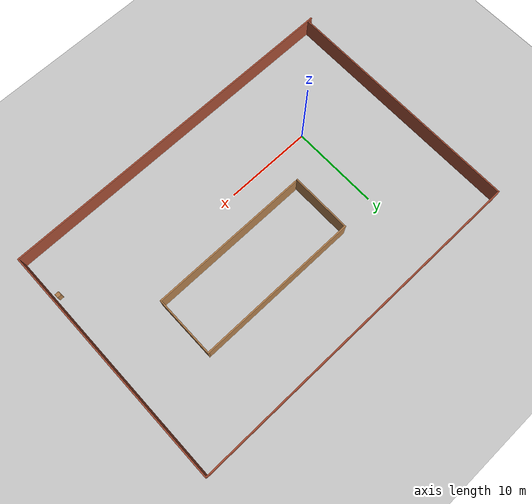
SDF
<sdf version="1.7">
 <world name="default">
  <light name="sun" type="directional">
   <pose>0 0 10 0 -0 0</pose>
   <diffuse>0.8 0.8 0.8 1</diffuse>
   <specular>0.2 0.2 0.2 1</specular>
   <attenuation>
    <range>1000</range>
    <constant>0.9</constant>
    <linear>0.01</linear>
    <quadratic>0.001</quadratic>
   </attenuation>
   <direction>-0.5 0.1 -0.9</direction>
   <spot><inner_angle>0</inner_angle><outer_angle>0</outer_angle><falloff>0</falloff></spot>
  </light>
  <gravity>0 0 -9.8</gravity>
  <magnetic_field>6e-06 2.3e-05 -4.2e-05</magnetic_field>
  <atmosphere type="adiabatic"/>
  <physics type="ode">
   <max_step_size>0.001</max_step_size>
   <real_time_factor>1</real_time_factor>
   <real_time_update_rate>1000</real_time_update_rate>
  </physics>
  <scene><ambient>0.4 0.4 0.4 1</ambient><background>0.7 0.7 0.7 1</background><shadows>1</shadows></scene>
  <spherical_coordinates>
   <surface_model>EARTH_WGS84</surface_model>
   <latitude_deg>0</latitude_deg>
   <longitude_deg>0</longitude_deg>
   <elevation>0</elevation>
   <heading_deg>0</heading_deg>
  </spherical_coordinates>
  <model name="Untitled999">
   <pose>10.3729 5.00854 0 0 -0 0</pose>
   <link name="Wall_1">
    <collision name="Wall_1_Collision">
     <geometry><box><size>40.5 0.15 2.5</size></box></geometry>
     <pose>0 0 1.25 0 -0 0</pose>
    </collision>
    <visual name="Wall_1_Visual">
     <pose>0 0 1.25 0 -0 0</pose>
     <geometry><box><size>40.5 0.15 2.5</size></box></geometry>
     <material>
      <script><uri>file://media/materials/scripts/gazebo.material</uri><name>Gazebo/Bricks</name></script>
      <ambient>1 1 1 1</ambient>
     </material>
     <meta><layer>0</layer></meta>
    </visual>
    <pose>0 -13.85 0 0 -0 0</pose>
   </link>
   <link name="Wall_10">
    <collision name="Wall_10_Collision">
     <geometry><box><size>18.5 0.15 2.5</size></box></geometry>
     <pose>0 0 1.25 0 -0 0</pose>
    </collision>
    <visual name="Wall_10_Visual">
     <pose>0 0 1.25 0 -0 0</pose>
     <geometry><box><size>18.5 0.15 2.5</size></box></geometry>
     <material>
      <script><uri>file://media/materials/scripts/gazebo.material</uri><name>Gazebo/Wood</name></script>
      <ambient>1 1 1 1</ambient>
     </material>
     <meta><layer>0</layer></meta>
    </visual>
    <pose>3.47913 5.75626 0 0 -0 3.14159</pose>
   </link>
   <link name="Wall_11">
    <collision name="Wall_11_Collision">
     <geometry><box><size>7 0.15 2.5</size></box></geometry>
     <pose>0 0 1.25 0 -0 0</pose>
    </collision>
    <visual name="Wall_11_Visual">
     <pose>0 0 1.25 0 -0 0</pose>
     <geometry><box><size>7 0.15 2.5</size></box></geometry>
     <material>
      <script><uri>file://media/materials/scripts/gazebo.material</uri><name>Gazebo/Wood</name></script>
      <ambient>1 1 1 1</ambient>
     </material>
     <meta><layer>0</layer></meta>
    </visual>
    <pose>-5.69587 2.33126 0 0 -0 -1.5708</pose>
   </link>
   <link name="Wall_2">
    <collision name="Wall_2_Collision">
     <geometry><box><size>21.75 0.15 2.5</size></box></geometry>
     <pose>0 0 1.25 0 -0 0</pose>
    </collision>
    <visual name="Wall_2_Visual">
     <pose>0 0 1.25 0 -0 0</pose>
     <geometry><box><size>21.75 0.15 2.5</size></box></geometry>
     <material>
      <script><uri>file://media/materials/scripts/gazebo.material</uri><name>Gazebo/Bricks</name></script>
      <ambient>1 1 1 1</ambient>
     </material>
     <meta><layer>0</layer></meta>
    </visual>
    <pose>20.175 -3.05 0 0 -0 1.5708</pose>
   </link>
   <link name="Wall_3">
    <collision name="Wall_3_Collision">
     <geometry><box><size>6.25 0.15 2.5</size></box></geometry>
     <pose>0 0 1.25 0 -0 0</pose>
    </collision>
    <visual name="Wall_3_Visual">
     <pose>0 0 1.25 0 -0 0</pose>
     <geometry><box><size>6.25 0.15 2.5</size></box></geometry>
     <material>
      <script><uri>file://media/materials/scripts/gazebo.material</uri><name>Gazebo/Bricks</name></script>
      <ambient>1 1 1 1</ambient>
     </material>
     <meta><layer>0</layer></meta>
    </visual>
    <pose>20.175 10.8 0 0 -0 1.5708</pose>
   </link>
   <link name="Wall_4">
    <collision name="Wall_4_Collision">
     <geometry><box><size>40 0.15 2.5</size></box></geometry>
     <pose>0 0 1.25 0 -0 0</pose>
    </collision>
    <visual name="Wall_4_Visual">
     <pose>0 0 1.25 0 -0 0</pose>
     <geometry><box><size>40 0.15 2.5</size></box></geometry>
     <material>
      <script><uri>file://media/materials/scripts/gazebo.material</uri><name>Gazebo/Bricks</name></script>
      <ambient>1 1 1 1</ambient>
     </material>
     <meta><layer>0</layer></meta>
    </visual>
    <pose>0.25 13.85 0 0 -0 3.14159</pose>
   </link>
   <link name="Wall_5">
    <collision name="Wall_5_Collision">
     <geometry><box><size>27.75 0.15 2.5</size></box></geometry>
     <pose>0 0 1.25 0 -0 0</pose>
    </collision>
    <visual name="Wall_5_Visual">
     <pose>0 0 1.25 0 -0 0</pose>
     <geometry><box><size>27.75 0.15 2.5</size></box></geometry>
     <material>
      <script><uri>file://media/materials/scripts/gazebo.material</uri><name>Gazebo/Bricks</name></script>
      <ambient>1 1 1 1</ambient>
     </material>
     <meta><layer>0</layer></meta>
    </visual>
    <pose>-19.675 0.05 0 0 -0 -1.5708</pose>
   </link>
   <link name="Wall_8">
    <collision name="Wall_8_Collision">
     <geometry><box><size>18.25 0.15 2.5</size></box></geometry>
     <pose>0 0 1.25 0 -0 0</pose>
    </collision>
    <visual name="Wall_8_Visual">
     <pose>0 0 1.25 0 -0 0</pose>
     <geometry><box><size>18.25 0.15 2.5</size></box></geometry>
     <material>
      <script><uri>file://media/materials/scripts/gazebo.material</uri><name>Gazebo/Wood</name></script>
      <ambient>1 1 1 1</ambient>
     </material>
     <meta><layer>0</layer></meta>
    </visual>
    <pose>3.60413 -1.09374 0 0 -0 0</pose>
   </link>
   <link name="Wall_9">
    <collision name="Wall_9_Collision">
     <geometry><box><size>7 0.15 2.5</size></box></geometry>
     <pose>0 0 1.25 0 -0 0</pose>
    </collision>
    <visual name="Wall_9_Visual">
     <pose>0 0 1.25 0 -0 0</pose>
     <geometry><box><size>7 0.15 2.5</size></box></geometry>
     <material>
      <script><uri>file://media/materials/scripts/gazebo.material</uri><name>Gazebo/Wood</name></script>
      <ambient>1 1 1 1</ambient>
     </material>
     <meta><layer>0</layer></meta>
    </visual>
    <pose>12.6541 2.33126 0 0 -0 1.5708</pose>
   </link>
   <static>1</static>
  </model>
  <model name="cabinet">
   <static>1</static>
   <link name="cabinet_bottom_plate">
    <inertial>
     <pose>0 0 -1 0 -0 0</pose>
     <inertia><ixx>2.05</ixx><ixy>0</ixy><ixz>0</ixz><iyy>2.05</iyy><iyz>0</iyz><izz>2.05</izz></inertia>
     <mass>25</mass>
    </inertial>
    <collision name="cabinet_bottom_plate_geom">
     <pose>0 0 0.01 0 -0 0</pose>
     <geometry><box><size>0.45 0.45 0.02</size></box></geometry>
    </collision>
    <visual name="cabinet_bottom_plate_geom_visual">
     <pose>0 0 0.01 0 -0 0</pose>
     <geometry><box><size>0.45 0.45 0.02</size></box></geometry>
     <material>
      <script><uri>file://media/materials/scripts/gazebo.material</uri><name>Gazebo/Wood</name></script>
     </material>
    </visual>
    <collision name="cabinet_bottom_plate_geom_cabinet_back_plate">
     <pose>0.235 0 0.51 0 -0 0</pose>
     <geometry><box><size>0.02 0.45 1.02</size></box></geometry>
    </collision>
    <visual name="cabinet_bottom_plate_geom_cabinet_back_plate_visual">
     <pose>0.235 0 0.51 0 -0 0</pose>
     <geometry><box><size>0.02 0.45 1.02</size></box></geometry>
     <material>
      <script><uri>file://media/materials/scripts/gazebo.material</uri><name>Gazebo/Wood</name></script>
     </material>
    </visual>
    <collision name="cabinet_bottom_plate_geom_cabinet_left_plate">
     <pose>0 0.235 0.51 0 -0 0</pose>
     <geometry><box><size>0.45 0.02 1.02</size></box></geometry>
    </collision>
    <visual name="cabinet_bottom_plate_geom_cabinet_left_plate_visual">
     <pose>0 0.235 0.51 0 -0 0</pose>
     <geometry><box><size>0.45 0.02 1.02</size></box></geometry>
     <material>
      <script><uri>file://media/materials/scripts/gazebo.material</uri><name>Gazebo/Wood</name></script>
     </material>
    </visual>
    <collision name="cabinet_bottom_plate_geom_cabinet_middle_plate">
     <pose>0 0 0.51 0 -0 0</pose>
     <geometry><box><size>0.45 0.45 0.02</size></box></geometry>
    </collision>
    <visual name="cabinet_bottom_plate_geom_cabinet_middle_plate_visual">
     <pose>0 0 0.51 0 -0 0</pose>
     <geometry><box><size>0.45 0.45 0.02</size></box></geometry>
     <material>
      <script><uri>file://media/materials/scripts/gazebo.material</uri><name>Gazebo/Wood</name></script>
     </material>
    </visual>
    <collision name="cabinet_bottom_plate_geom_cabinet_right_plate">
     <pose>0 -0.235 0.51 0 -0 0</pose>
     <geometry><box><size>0.45 0.02 1.02</size></box></geometry>
    </collision>
    <visual name="cabinet_bottom_plate_geom_cabinet_right_plate_visual">
     <pose>0 -0.235 0.51 0 -0 0</pose>
     <geometry><box><size>0.45 0.02 1.02</size></box></geometry>
     <material>
      <script><uri>file://media/materials/scripts/gazebo.material</uri><name>Gazebo/Wood</name></script>
     </material>
    </visual>
    <collision name="cabinet_bottom_plate_geom_cabinet_top_plate">
     <pose>0 0 1.01 0 -0 0</pose>
     <geometry><box><size>0.45 0.45 0.02</size></box></geometry>
    </collision>
    <visual name="cabinet_bottom_plate_geom_cabinet_top_plate_visual">
     <pose>0 0 1.01 0 -0 0</pose>
     <geometry><box><size>0.45 0.45 0.02</size></box></geometry>
     <material>
      <script><uri>file://media/materials/scripts/gazebo.material</uri><name>Gazebo/Wood</name></script>
     </material>
    </visual>
   </link>
   <pose>29.977 -3.88611 0 0 -0 0</pose>
  </model>
  <model name="my_ground_plane">
   <static>1</static>
   <link name="link">
    <collision name="collision">
     <geometry><plane><normal>0 0 1</normal><size>100 100</size></plane></geometry>
     <surface><friction><ode><mu>100</mu><mu2>50</mu2></ode></friction></surface>
    </collision>
    <visual name="visual">
     <cast_shadows>0</cast_shadows>
     <geometry><plane><normal>0 0 1</normal><size>100 100</size></plane></geometry>
     <material>
      <script>
       <uri>model://my_ground_plane/materials/scripts</uri>
       <uri>model://my_ground_plane/materials/textures/</uri>
       <name>MyGroundPlane/Image</name>
      </script>
     </material>
    </visual>
   </link>
   <pose>0.901426 1.46345 0 0 -0 0</pose>
  </model>
 </world>
</sdf>
